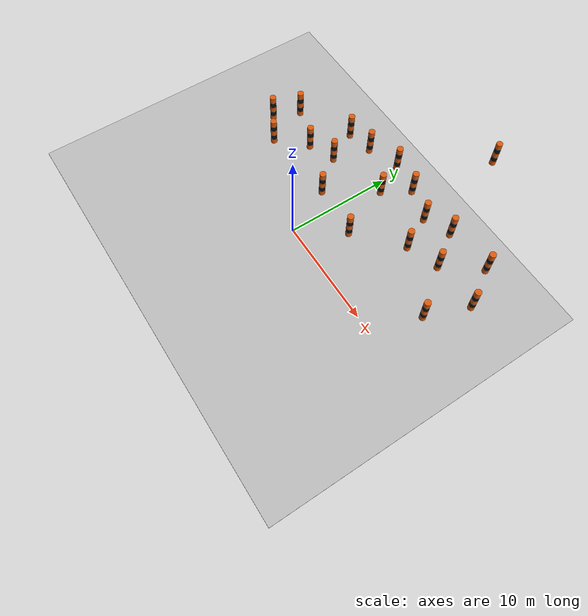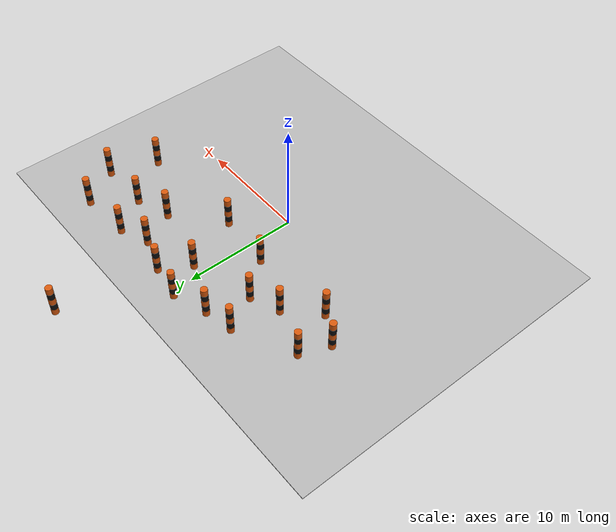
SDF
<sdf version="1.6">
 <world name="u_shape_lightweight">
  <model name="ground">
   <static>true</static>
   <link name="link">
    <collision name="collision"><geometry><box><size>40 30 0.1</size></box></geometry></collision>
    <visual name="visual"><geometry><box><size>40 30 0.1</size></box></geometry></visual>
   </link>
   <pose>0 0 -0.05 0 0 0</pose>
  </model>
  <model name="pole_01">
   <static>true</static>
   <pose>-12 5.5 0 0 0 0</pose>
   <link name="link">
    <collision name="collision">
     <pose>0 0 1.5 0 0 0</pose>
     <geometry><cylinder><radius>0.30</radius><length>3.0</length></cylinder></geometry>
    </collision>
    <visual name="b1">
     <pose>0 0 0.3 0 0 0</pose>
     <geometry><cylinder><radius>0.30</radius><length>0.6</length></cylinder></geometry>
     <material><ambient>0.85 0.35 0.05 1</ambient><diffuse>0.85 0.35 0.05 1</diffuse></material>
    </visual>
    <visual name="b2">
     <pose>0 0 0.9 0 0 0</pose>
     <geometry><cylinder><radius>0.30</radius><length>0.6</length></cylinder></geometry>
     <material><ambient>0.05 0.05 0.05 1</ambient><diffuse>0.05 0.05 0.05 1</diffuse></material>
    </visual>
    <visual name="b3">
     <pose>0 0 1.5 0 0 0</pose>
     <geometry><cylinder><radius>0.30</radius><length>0.6</length></cylinder></geometry>
     <material><ambient>0.85 0.35 0.05 1</ambient><diffuse>0.85 0.35 0.05 1</diffuse></material>
    </visual>
    <visual name="b4">
     <pose>0 0 2.1 0 0 0</pose>
     <geometry><cylinder><radius>0.30</radius><length>0.6</length></cylinder></geometry>
     <material><ambient>0.05 0.05 0.05 1</ambient><diffuse>0.05 0.05 0.05 1</diffuse></material>
    </visual>
    <visual name="b5">
     <pose>0 0 2.7 0 0 0</pose>
     <geometry><cylinder><radius>0.30</radius><length>0.6</length></cylinder></geometry>
     <material><ambient>0.85 0.35 0.05 1</ambient><diffuse>0.85 0.35 0.05 1</diffuse></material>
    </visual>
   </link>
  </model>
  <model name="pole_02">
   <static>true</static>
   <pose>-11 8 0 0 0 0</pose>
   <link name="link">
    <collision name="collision">
     <pose>0 0 1.5 0 0 0</pose>
     <geometry><cylinder><radius>0.30</radius><length>3.0</length></cylinder></geometry>
    </collision>
    <visual name="b1">
     <pose>0 0 0.3 0 0 0</pose>
     <geometry><cylinder><radius>0.30</radius><length>0.6</length></cylinder></geometry>
     <material><ambient>0.85 0.35 0.05 1</ambient><diffuse>0.85 0.35 0.05 1</diffuse></material>
    </visual>
    <visual name="b2">
     <pose>0 0 0.9 0 0 0</pose>
     <geometry><cylinder><radius>0.30</radius><length>0.6</length></cylinder></geometry>
     <material><ambient>0.05 0.05 0.05 1</ambient><diffuse>0.05 0.05 0.05 1</diffuse></material>
    </visual>
    <visual name="b3">
     <pose>0 0 1.5 0 0 0</pose>
     <geometry><cylinder><radius>0.30</radius><length>0.6</length></cylinder></geometry>
     <material><ambient>0.85 0.35 0.05 1</ambient><diffuse>0.85 0.35 0.05 1</diffuse></material>
    </visual>
    <visual name="b4">
     <pose>0 0 2.1 0 0 0</pose>
     <geometry><cylinder><radius>0.30</radius><length>0.6</length></cylinder></geometry>
     <material><ambient>0.05 0.05 0.05 1</ambient><diffuse>0.05 0.05 0.05 1</diffuse></material>
    </visual>
    <visual name="b5">
     <pose>0 0 2.7 0 0 0</pose>
     <geometry><cylinder><radius>0.30</radius><length>0.6</length></cylinder></geometry>
     <material><ambient>0.85 0.35 0.05 1</ambient><diffuse>0.85 0.35 0.05 1</diffuse></material>
    </visual>
   </link>
  </model>
  <model name="pole_03">
   <static>true</static>
   <pose>-9.5 4 0 0 0 0</pose>
   <link name="link">
    <collision name="collision">
     <pose>0 0 1.5 0 0 0</pose>
     <geometry><cylinder><radius>0.30</radius><length>3.0</length></cylinder></geometry>
    </collision>
    <visual name="b1">
     <pose>0 0 0.3 0 0 0</pose>
     <geometry><cylinder><radius>0.30</radius><length>0.6</length></cylinder></geometry>
     <material><ambient>0.85 0.35 0.05 1</ambient><diffuse>0.85 0.35 0.05 1</diffuse></material>
    </visual>
    <visual name="b2">
     <pose>0 0 0.9 0 0 0</pose>
     <geometry><cylinder><radius>0.30</radius><length>0.6</length></cylinder></geometry>
     <material><ambient>0.05 0.05 0.05 1</ambient><diffuse>0.05 0.05 0.05 1</diffuse></material>
    </visual>
    <visual name="b3">
     <pose>0 0 1.5 0 0 0</pose>
     <geometry><cylinder><radius>0.30</radius><length>0.6</length></cylinder></geometry>
     <material><ambient>0.85 0.35 0.05 1</ambient><diffuse>0.85 0.35 0.05 1</diffuse></material>
    </visual>
    <visual name="b4">
     <pose>0 0 2.1 0 0 0</pose>
     <geometry><cylinder><radius>0.30</radius><length>0.6</length></cylinder></geometry>
     <material><ambient>0.05 0.05 0.05 1</ambient><diffuse>0.05 0.05 0.05 1</diffuse></material>
    </visual>
    <visual name="b5">
     <pose>0 0 2.7 0 0 0</pose>
     <geometry><cylinder><radius>0.30</radius><length>0.6</length></cylinder></geometry>
     <material><ambient>0.85 0.35 0.05 1</ambient><diffuse>0.85 0.35 0.05 1</diffuse></material>
    </visual>
   </link>
  </model>
  <model name="pole_05">
   <static>true</static>
   <pose>-7 6.5 0 0 0 0</pose>
   <link name="link">
    <collision name="collision">
     <pose>0 0 1.5 0 0 0</pose>
     <geometry><cylinder><radius>0.30</radius><length>3.0</length></cylinder></geometry>
    </collision>
    <visual name="b1">
     <pose>0 0 0.3 0 0 0</pose>
     <geometry><cylinder><radius>0.30</radius><length>0.6</length></cylinder></geometry>
     <material><ambient>0.85 0.35 0.05 1</ambient><diffuse>0.85 0.35 0.05 1</diffuse></material>
    </visual>
    <visual name="b2">
     <pose>0 0 0.9 0 0 0</pose>
     <geometry><cylinder><radius>0.30</radius><length>0.6</length></cylinder></geometry>
     <material><ambient>0.05 0.05 0.05 1</ambient><diffuse>0.05 0.05 0.05 1</diffuse></material>
    </visual>
    <visual name="b3">
     <pose>0 0 1.5 0 0 0</pose>
     <geometry><cylinder><radius>0.30</radius><length>0.6</length></cylinder></geometry>
     <material><ambient>0.85 0.35 0.05 1</ambient><diffuse>0.85 0.35 0.05 1</diffuse></material>
    </visual>
    <visual name="b4">
     <pose>0 0 2.1 0 0 0</pose>
     <geometry><cylinder><radius>0.30</radius><length>0.6</length></cylinder></geometry>
     <material><ambient>0.05 0.05 0.05 1</ambient><diffuse>0.05 0.05 0.05 1</diffuse></material>
    </visual>
    <visual name="b5">
     <pose>0 0 2.7 0 0 0</pose>
     <geometry><cylinder><radius>0.30</radius><length>0.6</length></cylinder></geometry>
     <material><ambient>0.85 0.35 0.05 1</ambient><diffuse>0.85 0.35 0.05 1</diffuse></material>
    </visual>
   </link>
  </model>
  <model name="pole_06">
   <static>true</static>
   <pose>-6 10.5 0 0 0 0</pose>
   <link name="link">
    <collision name="collision">
     <pose>0 0 1.5 0 0 0</pose>
     <geometry><cylinder><radius>0.30</radius><length>3.0</length></cylinder></geometry>
    </collision>
    <visual name="b1">
     <pose>0 0 0.3 0 0 0</pose>
     <geometry><cylinder><radius>0.30</radius><length>0.6</length></cylinder></geometry>
     <material><ambient>0.85 0.35 0.05 1</ambient><diffuse>0.85 0.35 0.05 1</diffuse></material>
    </visual>
    <visual name="b2">
     <pose>0 0 0.9 0 0 0</pose>
     <geometry><cylinder><radius>0.30</radius><length>0.6</length></cylinder></geometry>
     <material><ambient>0.05 0.05 0.05 1</ambient><diffuse>0.05 0.05 0.05 1</diffuse></material>
    </visual>
    <visual name="b3">
     <pose>0 0 1.5 0 0 0</pose>
     <geometry><cylinder><radius>0.30</radius><length>0.6</length></cylinder></geometry>
     <material><ambient>0.85 0.35 0.05 1</ambient><diffuse>0.85 0.35 0.05 1</diffuse></material>
    </visual>
    <visual name="b4">
     <pose>0 0 2.1 0 0 0</pose>
     <geometry><cylinder><radius>0.30</radius><length>0.6</length></cylinder></geometry>
     <material><ambient>0.05 0.05 0.05 1</ambient><diffuse>0.05 0.05 0.05 1</diffuse></material>
    </visual>
    <visual name="b5">
     <pose>0 0 2.7 0 0 0</pose>
     <geometry><cylinder><radius>0.30</radius><length>0.6</length></cylinder></geometry>
     <material><ambient>0.85 0.35 0.05 1</ambient><diffuse>0.85 0.35 0.05 1</diffuse></material>
    </visual>
   </link>
  </model>
  <model name="pole_07">
   <static>true</static>
   <pose>-4.5 7.5 0 0 0 0</pose>
   <link name="link">
    <collision name="collision">
     <pose>0 0 1.5 0 0 0</pose>
     <geometry><cylinder><radius>0.30</radius><length>3.0</length></cylinder></geometry>
    </collision>
    <visual name="b1">
     <pose>0 0 0.3 0 0 0</pose>
     <geometry><cylinder><radius>0.30</radius><length>0.6</length></cylinder></geometry>
     <material><ambient>0.85 0.35 0.05 1</ambient><diffuse>0.85 0.35 0.05 1</diffuse></material>
    </visual>
    <visual name="b2">
     <pose>0 0 0.9 0 0 0</pose>
     <geometry><cylinder><radius>0.30</radius><length>0.6</length></cylinder></geometry>
     <material><ambient>0.05 0.05 0.05 1</ambient><diffuse>0.05 0.05 0.05 1</diffuse></material>
    </visual>
    <visual name="b3">
     <pose>0 0 1.5 0 0 0</pose>
     <geometry><cylinder><radius>0.30</radius><length>0.6</length></cylinder></geometry>
     <material><ambient>0.85 0.35 0.05 1</ambient><diffuse>0.85 0.35 0.05 1</diffuse></material>
    </visual>
    <visual name="b4">
     <pose>0 0 2.1 0 0 0</pose>
     <geometry><cylinder><radius>0.30</radius><length>0.6</length></cylinder></geometry>
     <material><ambient>0.05 0.05 0.05 1</ambient><diffuse>0.05 0.05 0.05 1</diffuse></material>
    </visual>
    <visual name="b5">
     <pose>0 0 2.7 0 0 0</pose>
     <geometry><cylinder><radius>0.30</radius><length>0.6</length></cylinder></geometry>
     <material><ambient>0.85 0.35 0.05 1</ambient><diffuse>0.85 0.35 0.05 1</diffuse></material>
    </visual>
   </link>
  </model>
  <model name="pole_08">
   <static>true</static>
   <pose>-3.5 11 0 0 0 0</pose>
   <link name="link">
    <collision name="collision">
     <pose>0 0 1.5 0 0 0</pose>
     <geometry><cylinder><radius>0.30</radius><length>3.0</length></cylinder></geometry>
    </collision>
    <visual name="b1">
     <pose>0 0 0.3 0 0 0</pose>
     <geometry><cylinder><radius>0.30</radius><length>0.6</length></cylinder></geometry>
     <material><ambient>0.85 0.35 0.05 1</ambient><diffuse>0.85 0.35 0.05 1</diffuse></material>
    </visual>
    <visual name="b2">
     <pose>0 0 0.9 0 0 0</pose>
     <geometry><cylinder><radius>0.30</radius><length>0.6</length></cylinder></geometry>
     <material><ambient>0.05 0.05 0.05 1</ambient><diffuse>0.05 0.05 0.05 1</diffuse></material>
    </visual>
    <visual name="b3">
     <pose>0 0 1.5 0 0 0</pose>
     <geometry><cylinder><radius>0.30</radius><length>0.6</length></cylinder></geometry>
     <material><ambient>0.85 0.35 0.05 1</ambient><diffuse>0.85 0.35 0.05 1</diffuse></material>
    </visual>
    <visual name="b4">
     <pose>0 0 2.1 0 0 0</pose>
     <geometry><cylinder><radius>0.30</radius><length>0.6</length></cylinder></geometry>
     <material><ambient>0.05 0.05 0.05 1</ambient><diffuse>0.05 0.05 0.05 1</diffuse></material>
    </visual>
    <visual name="b5">
     <pose>0 0 2.7 0 0 0</pose>
     <geometry><cylinder><radius>0.30</radius><length>0.6</length></cylinder></geometry>
     <material><ambient>0.85 0.35 0.05 1</ambient><diffuse>0.85 0.35 0.05 1</diffuse></material>
    </visual>
   </link>
  </model>
  <model name="pole_09">
   <static>true</static>
   <pose>-2 4.5 0 0 0 0</pose>
   <link name="link">
    <collision name="collision">
     <pose>0 0 1.5 0 0 0</pose>
     <geometry><cylinder><radius>0.30</radius><length>3.0</length></cylinder></geometry>
    </collision>
    <visual name="b1">
     <pose>0 0 0.3 0 0 0</pose>
     <geometry><cylinder><radius>0.30</radius><length>0.6</length></cylinder></geometry>
     <material><ambient>0.85 0.35 0.05 1</ambient><diffuse>0.85 0.35 0.05 1</diffuse></material>
    </visual>
    <visual name="b2">
     <pose>0 0 0.9 0 0 0</pose>
     <geometry><cylinder><radius>0.30</radius><length>0.6</length></cylinder></geometry>
     <material><ambient>0.05 0.05 0.05 1</ambient><diffuse>0.05 0.05 0.05 1</diffuse></material>
    </visual>
    <visual name="b3">
     <pose>0 0 1.5 0 0 0</pose>
     <geometry><cylinder><radius>0.30</radius><length>0.6</length></cylinder></geometry>
     <material><ambient>0.85 0.35 0.05 1</ambient><diffuse>0.85 0.35 0.05 1</diffuse></material>
    </visual>
    <visual name="b4">
     <pose>0 0 2.1 0 0 0</pose>
     <geometry><cylinder><radius>0.30</radius><length>0.6</length></cylinder></geometry>
     <material><ambient>0.05 0.05 0.05 1</ambient><diffuse>0.05 0.05 0.05 1</diffuse></material>
    </visual>
    <visual name="b5">
     <pose>0 0 2.7 0 0 0</pose>
     <geometry><cylinder><radius>0.30</radius><length>0.6</length></cylinder></geometry>
     <material><ambient>0.85 0.35 0.05 1</ambient><diffuse>0.85 0.35 0.05 1</diffuse></material>
    </visual>
   </link>
  </model>
  <model name="pole_10">
   <static>true</static>
   <pose>-0.5 12 0 0 0 0</pose>
   <link name="link">
    <collision name="collision">
     <pose>0 0 1.5 0 0 0</pose>
     <geometry><cylinder><radius>0.30</radius><length>3.0</length></cylinder></geometry>
    </collision>
    <visual name="b1">
     <pose>0 0 0.3 0 0 0</pose>
     <geometry><cylinder><radius>0.30</radius><length>0.6</length></cylinder></geometry>
     <material><ambient>0.85 0.35 0.05 1</ambient><diffuse>0.85 0.35 0.05 1</diffuse></material>
    </visual>
    <visual name="b2">
     <pose>0 0 0.9 0 0 0</pose>
     <geometry><cylinder><radius>0.30</radius><length>0.6</length></cylinder></geometry>
     <material><ambient>0.05 0.05 0.05 1</ambient><diffuse>0.05 0.05 0.05 1</diffuse></material>
    </visual>
    <visual name="b3">
     <pose>0 0 1.5 0 0 0</pose>
     <geometry><cylinder><radius>0.30</radius><length>0.6</length></cylinder></geometry>
     <material><ambient>0.85 0.35 0.05 1</ambient><diffuse>0.85 0.35 0.05 1</diffuse></material>
    </visual>
    <visual name="b4">
     <pose>0 0 2.1 0 0 0</pose>
     <geometry><cylinder><radius>0.30</radius><length>0.6</length></cylinder></geometry>
     <material><ambient>0.05 0.05 0.05 1</ambient><diffuse>0.05 0.05 0.05 1</diffuse></material>
    </visual>
    <visual name="b5">
     <pose>0 0 2.7 0 0 0</pose>
     <geometry><cylinder><radius>0.30</radius><length>0.6</length></cylinder></geometry>
     <material><ambient>0.85 0.35 0.05 1</ambient><diffuse>0.85 0.35 0.05 1</diffuse></material>
    </visual>
   </link>
  </model>
  <model name="pole_11">
   <static>true</static>
   <pose>1 9 0 0 0 0</pose>
   <link name="link">
    <collision name="collision">
     <pose>0 0 1.5 0 0 0</pose>
     <geometry><cylinder><radius>0.30</radius><length>3.0</length></cylinder></geometry>
    </collision>
    <visual name="b1">
     <pose>0 0 0.3 0 0 0</pose>
     <geometry><cylinder><radius>0.30</radius><length>0.6</length></cylinder></geometry>
     <material><ambient>0.85 0.35 0.05 1</ambient><diffuse>0.85 0.35 0.05 1</diffuse></material>
    </visual>
    <visual name="b2">
     <pose>0 0 0.9 0 0 0</pose>
     <geometry><cylinder><radius>0.30</radius><length>0.6</length></cylinder></geometry>
     <material><ambient>0.05 0.05 0.05 1</ambient><diffuse>0.05 0.05 0.05 1</diffuse></material>
    </visual>
    <visual name="b3">
     <pose>0 0 1.5 0 0 0</pose>
     <geometry><cylinder><radius>0.30</radius><length>0.6</length></cylinder></geometry>
     <material><ambient>0.85 0.35 0.05 1</ambient><diffuse>0.85 0.35 0.05 1</diffuse></material>
    </visual>
    <visual name="b4">
     <pose>0 0 2.1 0 0 0</pose>
     <geometry><cylinder><radius>0.30</radius><length>0.6</length></cylinder></geometry>
     <material><ambient>0.05 0.05 0.05 1</ambient><diffuse>0.05 0.05 0.05 1</diffuse></material>
    </visual>
    <visual name="b5">
     <pose>0 0 2.7 0 0 0</pose>
     <geometry><cylinder><radius>0.30</radius><length>0.6</length></cylinder></geometry>
     <material><ambient>0.85 0.35 0.05 1</ambient><diffuse>0.85 0.35 0.05 1</diffuse></material>
    </visual>
   </link>
  </model>
  <model name="pole_12">
   <static>true</static>
   <pose>2.5 11.5 0 0 0 0</pose>
   <link name="link">
    <collision name="collision">
     <pose>0 0 1.5 0 0 0</pose>
     <geometry><cylinder><radius>0.30</radius><length>3.0</length></cylinder></geometry>
    </collision>
    <visual name="b1">
     <pose>0 0 0.3 0 0 0</pose>
     <geometry><cylinder><radius>0.30</radius><length>0.6</length></cylinder></geometry>
     <material><ambient>0.85 0.35 0.05 1</ambient><diffuse>0.85 0.35 0.05 1</diffuse></material>
    </visual>
    <visual name="b2">
     <pose>0 0 0.9 0 0 0</pose>
     <geometry><cylinder><radius>0.30</radius><length>0.6</length></cylinder></geometry>
     <material><ambient>0.05 0.05 0.05 1</ambient><diffuse>0.05 0.05 0.05 1</diffuse></material>
    </visual>
    <visual name="b3">
     <pose>0 0 1.5 0 0 0</pose>
     <geometry><cylinder><radius>0.30</radius><length>0.6</length></cylinder></geometry>
     <material><ambient>0.85 0.35 0.05 1</ambient><diffuse>0.85 0.35 0.05 1</diffuse></material>
    </visual>
    <visual name="b4">
     <pose>0 0 2.1 0 0 0</pose>
     <geometry><cylinder><radius>0.30</radius><length>0.6</length></cylinder></geometry>
     <material><ambient>0.05 0.05 0.05 1</ambient><diffuse>0.05 0.05 0.05 1</diffuse></material>
    </visual>
    <visual name="b5">
     <pose>0 0 2.7 0 0 0</pose>
     <geometry><cylinder><radius>0.30</radius><length>0.6</length></cylinder></geometry>
     <material><ambient>0.85 0.35 0.05 1</ambient><diffuse>0.85 0.35 0.05 1</diffuse></material>
    </visual>
   </link>
  </model>
  <model name="pole_13">
   <static>true</static>
   <pose>4 20 0 0 0 0</pose>
   <link name="link">
    <collision name="collision">
     <pose>0 0 1.5 0 0 0</pose>
     <geometry><cylinder><radius>0.30</radius><length>3.0</length></cylinder></geometry>
    </collision>
    <visual name="b1">
     <pose>0 0 0.3 0 0 0</pose>
     <geometry><cylinder><radius>0.30</radius><length>0.6</length></cylinder></geometry>
     <material><ambient>0.85 0.35 0.05 1</ambient><diffuse>0.85 0.35 0.05 1</diffuse></material>
    </visual>
    <visual name="b2">
     <pose>0 0 0.9 0 0 0</pose>
     <geometry><cylinder><radius>0.30</radius><length>0.6</length></cylinder></geometry>
     <material><ambient>0.05 0.05 0.05 1</ambient><diffuse>0.05 0.05 0.05 1</diffuse></material>
    </visual>
    <visual name="b3">
     <pose>0 0 1.5 0 0 0</pose>
     <geometry><cylinder><radius>0.30</radius><length>0.6</length></cylinder></geometry>
     <material><ambient>0.85 0.35 0.05 1</ambient><diffuse>0.85 0.35 0.05 1</diffuse></material>
    </visual>
    <visual name="b4">
     <pose>0 0 2.1 0 0 0</pose>
     <geometry><cylinder><radius>0.30</radius><length>0.6</length></cylinder></geometry>
     <material><ambient>0.05 0.05 0.05 1</ambient><diffuse>0.05 0.05 0.05 1</diffuse></material>
    </visual>
    <visual name="b5">
     <pose>0 0 2.7 0 0 0</pose>
     <geometry><cylinder><radius>0.30</radius><length>0.6</length></cylinder></geometry>
     <material><ambient>0.85 0.35 0.05 1</ambient><diffuse>0.85 0.35 0.05 1</diffuse></material>
    </visual>
   </link>
  </model>
  <model name="pole_14">
   <static>true</static>
   <pose>5.5 10.5 0 0 0 0</pose>
   <link name="link">
    <collision name="collision">
     <pose>0 0 1.5 0 0 0</pose>
     <geometry><cylinder><radius>0.30</radius><length>3.0</length></cylinder></geometry>
    </collision>
    <visual name="b1">
     <pose>0 0 0.3 0 0 0</pose>
     <geometry><cylinder><radius>0.30</radius><length>0.6</length></cylinder></geometry>
     <material><ambient>0.85 0.35 0.05 1</ambient><diffuse>0.85 0.35 0.05 1</diffuse></material>
    </visual>
    <visual name="b2">
     <pose>0 0 0.9 0 0 0</pose>
     <geometry><cylinder><radius>0.30</radius><length>0.6</length></cylinder></geometry>
     <material><ambient>0.05 0.05 0.05 1</ambient><diffuse>0.05 0.05 0.05 1</diffuse></material>
    </visual>
    <visual name="b3">
     <pose>0 0 1.5 0 0 0</pose>
     <geometry><cylinder><radius>0.30</radius><length>0.6</length></cylinder></geometry>
     <material><ambient>0.85 0.35 0.05 1</ambient><diffuse>0.85 0.35 0.05 1</diffuse></material>
    </visual>
    <visual name="b4">
     <pose>0 0 2.1 0 0 0</pose>
     <geometry><cylinder><radius>0.30</radius><length>0.6</length></cylinder></geometry>
     <material><ambient>0.05 0.05 0.05 1</ambient><diffuse>0.05 0.05 0.05 1</diffuse></material>
    </visual>
    <visual name="b5">
     <pose>0 0 2.7 0 0 0</pose>
     <geometry><cylinder><radius>0.30</radius><length>0.6</length></cylinder></geometry>
     <material><ambient>0.85 0.35 0.05 1</ambient><diffuse>0.85 0.35 0.05 1</diffuse></material>
    </visual>
   </link>
  </model>
  <model name="pole_15">
   <static>true</static>
   <pose>7 7.5 0 0 0 0</pose>
   <link name="link">
    <collision name="collision">
     <pose>0 0 1.5 0 0 0</pose>
     <geometry><cylinder><radius>0.30</radius><length>3.0</length></cylinder></geometry>
    </collision>
    <visual name="b1">
     <pose>0 0 0.3 0 0 0</pose>
     <geometry><cylinder><radius>0.30</radius><length>0.6</length></cylinder></geometry>
     <material><ambient>0.85 0.35 0.05 1</ambient><diffuse>0.85 0.35 0.05 1</diffuse></material>
    </visual>
    <visual name="b2">
     <pose>0 0 0.9 0 0 0</pose>
     <geometry><cylinder><radius>0.30</radius><length>0.6</length></cylinder></geometry>
     <material><ambient>0.05 0.05 0.05 1</ambient><diffuse>0.05 0.05 0.05 1</diffuse></material>
    </visual>
    <visual name="b3">
     <pose>0 0 1.5 0 0 0</pose>
     <geometry><cylinder><radius>0.30</radius><length>0.6</length></cylinder></geometry>
     <material><ambient>0.85 0.35 0.05 1</ambient><diffuse>0.85 0.35 0.05 1</diffuse></material>
    </visual>
    <visual name="b4">
     <pose>0 0 2.1 0 0 0</pose>
     <geometry><cylinder><radius>0.30</radius><length>0.6</length></cylinder></geometry>
     <material><ambient>0.05 0.05 0.05 1</ambient><diffuse>0.05 0.05 0.05 1</diffuse></material>
    </visual>
    <visual name="b5">
     <pose>0 0 2.7 0 0 0</pose>
     <geometry><cylinder><radius>0.30</radius><length>0.6</length></cylinder></geometry>
     <material><ambient>0.85 0.35 0.05 1</ambient><diffuse>0.85 0.35 0.05 1</diffuse></material>
    </visual>
   </link>
  </model>
  <model name="pole_16">
   <static>true</static>
   <pose>8 11.5 0 0 0 0</pose>
   <link name="link">
    <collision name="collision">
     <pose>0 0 1.5 0 0 0</pose>
     <geometry><cylinder><radius>0.30</radius><length>3.0</length></cylinder></geometry>
    </collision>
    <visual name="b1">
     <pose>0 0 0.3 0 0 0</pose>
     <geometry><cylinder><radius>0.30</radius><length>0.6</length></cylinder></geometry>
     <material><ambient>0.85 0.35 0.05 1</ambient><diffuse>0.85 0.35 0.05 1</diffuse></material>
    </visual>
    <visual name="b2">
     <pose>0 0 0.9 0 0 0</pose>
     <geometry><cylinder><radius>0.30</radius><length>0.6</length></cylinder></geometry>
     <material><ambient>0.05 0.05 0.05 1</ambient><diffuse>0.05 0.05 0.05 1</diffuse></material>
    </visual>
    <visual name="b3">
     <pose>0 0 1.5 0 0 0</pose>
     <geometry><cylinder><radius>0.30</radius><length>0.6</length></cylinder></geometry>
     <material><ambient>0.85 0.35 0.05 1</ambient><diffuse>0.85 0.35 0.05 1</diffuse></material>
    </visual>
    <visual name="b4">
     <pose>0 0 2.1 0 0 0</pose>
     <geometry><cylinder><radius>0.30</radius><length>0.6</length></cylinder></geometry>
     <material><ambient>0.05 0.05 0.05 1</ambient><diffuse>0.05 0.05 0.05 1</diffuse></material>
    </visual>
    <visual name="b5">
     <pose>0 0 2.7 0 0 0</pose>
     <geometry><cylinder><radius>0.30</radius><length>0.6</length></cylinder></geometry>
     <material><ambient>0.85 0.35 0.05 1</ambient><diffuse>0.85 0.35 0.05 1</diffuse></material>
    </visual>
   </link>
  </model>
  <model name="pole_17">
   <static>true</static>
   <pose>10 8.5 0 0 0 0</pose>
   <link name="link">
    <collision name="collision">
     <pose>0 0 1.5 0 0 0</pose>
     <geometry><cylinder><radius>0.30</radius><length>3.0</length></cylinder></geometry>
    </collision>
    <visual name="b1">
     <pose>0 0 0.3 0 0 0</pose>
     <geometry><cylinder><radius>0.30</radius><length>0.6</length></cylinder></geometry>
     <material><ambient>0.85 0.35 0.05 1</ambient><diffuse>0.85 0.35 0.05 1</diffuse></material>
    </visual>
    <visual name="b2">
     <pose>0 0 0.9 0 0 0</pose>
     <geometry><cylinder><radius>0.30</radius><length>0.6</length></cylinder></geometry>
     <material><ambient>0.05 0.05 0.05 1</ambient><diffuse>0.05 0.05 0.05 1</diffuse></material>
    </visual>
    <visual name="b3">
     <pose>0 0 1.5 0 0 0</pose>
     <geometry><cylinder><radius>0.30</radius><length>0.6</length></cylinder></geometry>
     <material><ambient>0.85 0.35 0.05 1</ambient><diffuse>0.85 0.35 0.05 1</diffuse></material>
    </visual>
    <visual name="b4">
     <pose>0 0 2.1 0 0 0</pose>
     <geometry><cylinder><radius>0.30</radius><length>0.6</length></cylinder></geometry>
     <material><ambient>0.05 0.05 0.05 1</ambient><diffuse>0.05 0.05 0.05 1</diffuse></material>
    </visual>
    <visual name="b5">
     <pose>0 0 2.7 0 0 0</pose>
     <geometry><cylinder><radius>0.30</radius><length>0.6</length></cylinder></geometry>
     <material><ambient>0.85 0.35 0.05 1</ambient><diffuse>0.85 0.35 0.05 1</diffuse></material>
    </visual>
   </link>
  </model>
  <model name="pole_19">
   <static>true</static>
   <pose>12.5 11.8 0 0 0 0</pose>
   <link name="link">
    <collision name="collision">
     <pose>0 0 1.5 0 0 0</pose>
     <geometry><cylinder><radius>0.30</radius><length>3.0</length></cylinder></geometry>
    </collision>
    <visual name="b1">
     <pose>0 0 0.3 0 0 0</pose>
     <geometry><cylinder><radius>0.30</radius><length>0.6</length></cylinder></geometry>
     <material><ambient>0.85 0.35 0.05 1</ambient><diffuse>0.85 0.35 0.05 1</diffuse></material>
    </visual>
    <visual name="b2">
     <pose>0 0 0.9 0 0 0</pose>
     <geometry><cylinder><radius>0.30</radius><length>0.6</length></cylinder></geometry>
     <material><ambient>0.05 0.05 0.05 1</ambient><diffuse>0.05 0.05 0.05 1</diffuse></material>
    </visual>
    <visual name="b3">
     <pose>0 0 1.5 0 0 0</pose>
     <geometry><cylinder><radius>0.30</radius><length>0.6</length></cylinder></geometry>
     <material><ambient>0.85 0.35 0.05 1</ambient><diffuse>0.85 0.35 0.05 1</diffuse></material>
    </visual>
    <visual name="b4">
     <pose>0 0 2.1 0 0 0</pose>
     <geometry><cylinder><radius>0.30</radius><length>0.6</length></cylinder></geometry>
     <material><ambient>0.05 0.05 0.05 1</ambient><diffuse>0.05 0.05 0.05 1</diffuse></material>
    </visual>
    <visual name="b5">
     <pose>0 0 2.7 0 0 0</pose>
     <geometry><cylinder><radius>0.30</radius><length>0.6</length></cylinder></geometry>
     <material><ambient>0.85 0.35 0.05 1</ambient><diffuse>0.85 0.35 0.05 1</diffuse></material>
    </visual>
   </link>
  </model>
  <model name="pole_20">
   <static>true</static>
   <pose>14.5 8.5 0 0 0 0</pose>
   <link name="link">
    <collision name="collision">
     <pose>0 0 1.5 0 0 0</pose>
     <geometry><cylinder><radius>0.30</radius><length>3.0</length></cylinder></geometry>
    </collision>
    <visual name="b1">
     <pose>0 0 0.3 0 0 0</pose>
     <geometry><cylinder><radius>0.30</radius><length>0.6</length></cylinder></geometry>
     <material><ambient>0.85 0.35 0.05 1</ambient><diffuse>0.85 0.35 0.05 1</diffuse></material>
    </visual>
    <visual name="b2">
     <pose>0 0 0.9 0 0 0</pose>
     <geometry><cylinder><radius>0.30</radius><length>0.6</length></cylinder></geometry>
     <material><ambient>0.05 0.05 0.05 1</ambient><diffuse>0.05 0.05 0.05 1</diffuse></material>
    </visual>
    <visual name="b3">
     <pose>0 0 1.5 0 0 0</pose>
     <geometry><cylinder><radius>0.30</radius><length>0.6</length></cylinder></geometry>
     <material><ambient>0.85 0.35 0.05 1</ambient><diffuse>0.85 0.35 0.05 1</diffuse></material>
    </visual>
    <visual name="b4">
     <pose>0 0 2.1 0 0 0</pose>
     <geometry><cylinder><radius>0.30</radius><length>0.6</length></cylinder></geometry>
     <material><ambient>0.05 0.05 0.05 1</ambient><diffuse>0.05 0.05 0.05 1</diffuse></material>
    </visual>
    <visual name="b5">
     <pose>0 0 2.7 0 0 0</pose>
     <geometry><cylinder><radius>0.30</radius><length>0.6</length></cylinder></geometry>
     <material><ambient>0.85 0.35 0.05 1</ambient><diffuse>0.85 0.35 0.05 1</diffuse></material>
    </visual>
   </link>
  </model>
  <model name="pole_22">
   <static>true</static>
   <pose>3 4 0 0 0 0</pose>
   <link name="link">
    <collision name="collision">
     <pose>0 0 1.5 0 0 0</pose>
     <geometry><cylinder><radius>0.30</radius><length>3.0</length></cylinder></geometry>
    </collision>
    <visual name="b1">
     <pose>0 0 0.3 0 0 0</pose>
     <geometry><cylinder><radius>0.30</radius><length>0.6</length></cylinder></geometry>
     <material><ambient>0.85 0.35 0.05 1</ambient><diffuse>0.85 0.35 0.05 1</diffuse></material>
    </visual>
    <visual name="b2">
     <pose>0 0 0.9 0 0 0</pose>
     <geometry><cylinder><radius>0.30</radius><length>0.6</length></cylinder></geometry>
     <material><ambient>0.05 0.05 0.05 1</ambient><diffuse>0.05 0.05 0.05 1</diffuse></material>
    </visual>
    <visual name="b3">
     <pose>0 0 1.5 0 0 0</pose>
     <geometry><cylinder><radius>0.30</radius><length>0.6</length></cylinder></geometry>
     <material><ambient>0.85 0.35 0.05 1</ambient><diffuse>0.85 0.35 0.05 1</diffuse></material>
    </visual>
    <visual name="b4">
     <pose>0 0 2.1 0 0 0</pose>
     <geometry><cylinder><radius>0.30</radius><length>0.6</length></cylinder></geometry>
     <material><ambient>0.05 0.05 0.05 1</ambient><diffuse>0.05 0.05 0.05 1</diffuse></material>
    </visual>
    <visual name="b5">
     <pose>0 0 2.7 0 0 0</pose>
     <geometry><cylinder><radius>0.30</radius><length>0.6</length></cylinder></geometry>
     <material><ambient>0.85 0.35 0.05 1</ambient><diffuse>0.85 0.35 0.05 1</diffuse></material>
    </visual>
   </link>
  </model>
  <model name="pole_24">
   <static>true</static>
   <pose>13 4.5 0 0 0 0</pose>
   <link name="link">
    <collision name="collision">
     <pose>0 0 1.5 0 0 0</pose>
     <geometry><cylinder><radius>0.30</radius><length>3.0</length></cylinder></geometry>
    </collision>
    <visual name="b1">
     <pose>0 0 0.3 0 0 0</pose>
     <geometry><cylinder><radius>0.30</radius><length>0.6</length></cylinder></geometry>
     <material><ambient>0.85 0.35 0.05 1</ambient><diffuse>0.85 0.35 0.05 1</diffuse></material>
    </visual>
    <visual name="b2">
     <pose>0 0 0.9 0 0 0</pose>
     <geometry><cylinder><radius>0.30</radius><length>0.6</length></cylinder></geometry>
     <material><ambient>0.05 0.05 0.05 1</ambient><diffuse>0.05 0.05 0.05 1</diffuse></material>
    </visual>
    <visual name="b3">
     <pose>0 0 1.5 0 0 0</pose>
     <geometry><cylinder><radius>0.30</radius><length>0.6</length></cylinder></geometry>
     <material><ambient>0.85 0.35 0.05 1</ambient><diffuse>0.85 0.35 0.05 1</diffuse></material>
    </visual>
    <visual name="b4">
     <pose>0 0 2.1 0 0 0</pose>
     <geometry><cylinder><radius>0.30</radius><length>0.6</length></cylinder></geometry>
     <material><ambient>0.05 0.05 0.05 1</ambient><diffuse>0.05 0.05 0.05 1</diffuse></material>
    </visual>
    <visual name="b5">
     <pose>0 0 2.7 0 0 0</pose>
     <geometry><cylinder><radius>0.30</radius><length>0.6</length></cylinder></geometry>
     <material><ambient>0.85 0.35 0.05 1</ambient><diffuse>0.85 0.35 0.05 1</diffuse></material>
    </visual>
   </link>
  </model>
 </world>
</sdf>
